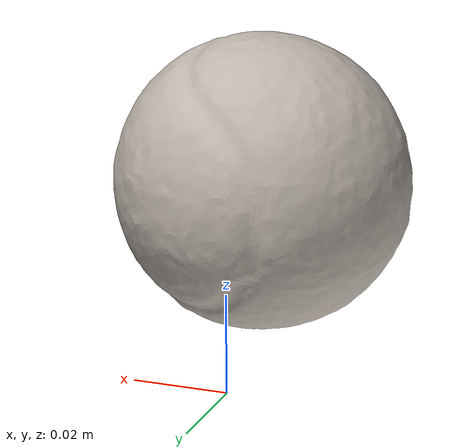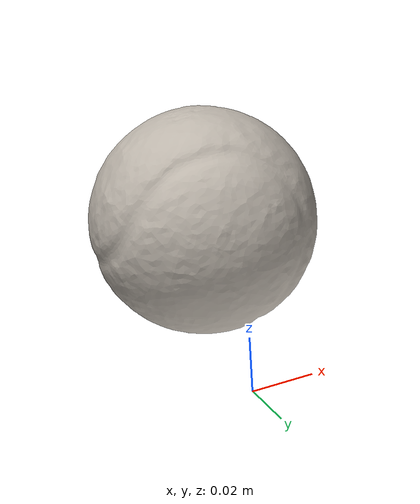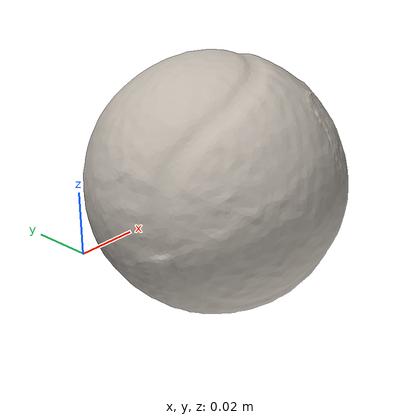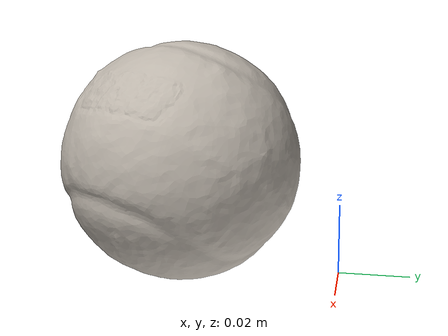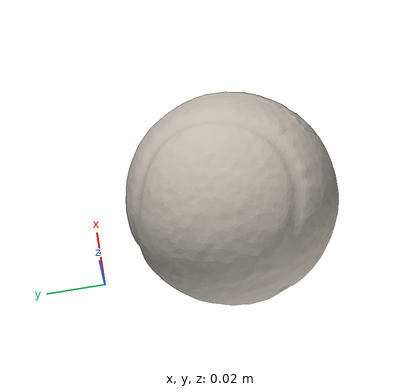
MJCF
<mujoco model="tennis_ball">
  <compiler angle="radian" meshdir="assets" texturedir="assets"/>
    <default>
        <default class="ycb_col">
            <geom contype="1" conaffinity="1" group="3" rgba=".4 .5 .6 1"/>
        </default>
        <default class="ycb_viz">
            <geom contype="0" conaffinity="0" type="mesh" mass="0"/>
        </default>
    </default>
  <asset>
    <texture type="2d" name="tennis_ball_tex" file="texture_map.png"/>
    <material name="tennis_ball_mat" texture="tennis_ball_tex" specular="0.5" shininess="0.5"/>
    <mesh file="textured.obj" name="tennis_ball"/>
    <mesh file="textured_collision_0.obj" name="tennis_ball_collision_0"/>
  </asset>
  <worldbody>
      <geom material="tennis_ball_mat" mesh="tennis_ball" class="ycb_viz"/>
      <geom mesh="tennis_ball_collision_0" class="ycb_col" conaffinity="1" condim="4" friction="0.1 0.1 0.1" mass="0.058" rgba="1 1 1 1" solimp="0.99 0.99 0.01" solref=".001 0.1" type="mesh" group="3"/>
  </worldbody>
</mujoco>
